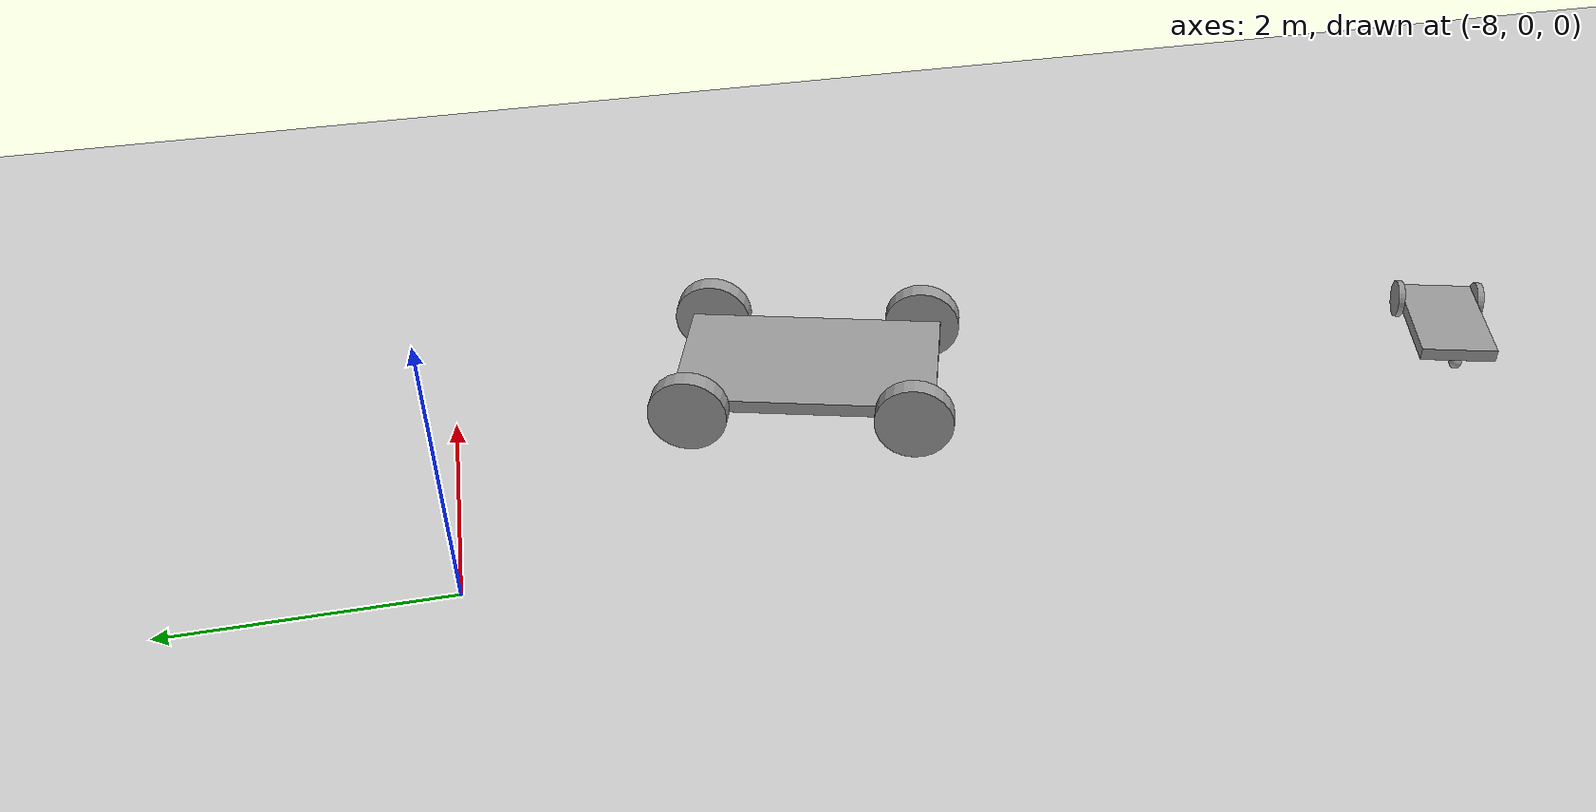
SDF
<sdf version="1.6">
 <world name="default">
  <model name="ground_plane">
   <static>1</static>
   <link name="link">
    <collision name="collision">
     <geometry><plane><normal>0 0 1</normal><size>100 100</size></plane></geometry>
     <surface>
      <contact><collide_bitmask>65535</collide_bitmask></contact>
      <friction><ode><mu>100</mu><mu2>50</mu2></ode></friction>
     </surface>
    </collision>
    <visual name="visual">
     <cast_shadows>0</cast_shadows>
     <geometry><plane><normal>0 0 1</normal><size>100 100</size></plane></geometry>
     <material>
      <script><uri>file://media/materials/scripts/gazebo.material</uri><name>Gazebo/Grey</name></script>
     </material>
    </visual>
   </link>
  </model>
  <model name="robot_4wheeled">
   <link name="link_1">
    <inertial>
     <mass>1</mass>
     <inertia>
      <ixx>0.166667</ixx>
      <ixy>0</ixy>
      <ixz>0</ixz>
      <iyy>0.166667</iyy>
      <iyz>0</iyz>
      <izz>0.166667</izz>
     </inertia>
    </inertial>
    <pose>-0 0.159884 0 0 -0 0</pose>
    <visual name="visual">
     <geometry><box><size>1.2 2 0.1</size></box></geometry>
     <material>
      <lighting>1</lighting>
      <script><uri>file://media/materials/scripts/gazebo.material</uri><name>Gazebo/Grey</name></script>
      <shader type="pixel"><normal_map>__default__</normal_map></shader>
      <ambient>0.3 0.3 0.3 1</ambient>
      <diffuse>0.7 0.7 0.7 1</diffuse>
      <specular>0.1 0.1 0.1 1</specular>
      <emissive>0 0 0 1</emissive>
     </material>
    </visual>
    <collision name="collision">
     <geometry><box><size>1.2 2 0.1</size></box></geometry>
     <surface>
      <friction>
       <ode><mu>1</mu><mu2>1</mu2><fdir1>0 0 0</fdir1><slip1>0</slip1><slip2>0</slip2></ode>
       <torsional>
        <coefficient>1</coefficient>
        <patch_radius>0</patch_radius>
        <surface_radius>0</surface_radius>
        <use_patch_radius>1</use_patch_radius>
        <ode><slip>0</slip></ode>
       </torsional>
      </friction>
      <bounce><restitution_coefficient>0</restitution_coefficient><threshold>1e+06</threshold></bounce>
      <contact>
       <collide_without_contact>0</collide_without_contact>
       <collide_without_contact_bitmask>1</collide_without_contact_bitmask>
       <collide_bitmask>1</collide_bitmask>
       <ode>
        <soft_cfm>0</soft_cfm>
        <soft_erp>0.2</soft_erp>
        <kp>1e+13</kp>
        <kd>1</kd>
        <max_vel>0.01</max_vel>
        <min_depth>0</min_depth>
       </ode>
       <bullet>
        <split_impulse>1</split_impulse>
        <split_impulse_penetration_threshold>-0.01</split_impulse_penetration_threshold>
        <soft_cfm>0</soft_cfm>
        <soft_erp>0.2</soft_erp>
        <kp>1e+13</kp>
        <kd>1</kd>
       </bullet>
      </contact>
     </surface>
    </collision>
   </link>
   <link name="link_2">
    <inertial>
     <mass>1</mass>
     <inertia><ixx>0.145833</ixx><ixy>0</ixy><ixz>0</ixz><iyy>0.145833</iyy><iyz>0</iyz><izz>0.125</izz></inertia>
    </inertial>
    <pose>-0.675001 1.00988 0 -3.14159 -1.57079 -3.14159</pose>
    <visual name="visual">
     <geometry><cylinder><radius>0.3</radius><length>0.15</length></cylinder></geometry>
     <material>
      <lighting>1</lighting>
      <script><uri>file://media/materials/scripts/gazebo.material</uri><name>Gazebo/Grey</name></script>
      <shader type="pixel"><normal_map>__default__</normal_map></shader>
      <ambient>0.3 0.3 0.3 1</ambient>
      <diffuse>0.7 0.7 0.7 1</diffuse>
      <specular>0.01 0.01 0.01 1</specular>
      <emissive>0 0 0 1</emissive>
     </material>
    </visual>
    <collision name="collision">
     <geometry><cylinder><radius>0.3</radius><length>0.15</length></cylinder></geometry>
     <surface>
      <friction>
       <ode><mu>1</mu><mu2>1</mu2><fdir1>0 0 0</fdir1><slip1>0</slip1><slip2>0</slip2></ode>
       <torsional>
        <coefficient>1</coefficient>
        <patch_radius>0</patch_radius>
        <surface_radius>0</surface_radius>
        <use_patch_radius>1</use_patch_radius>
        <ode><slip>0</slip></ode>
       </torsional>
      </friction>
      <bounce><restitution_coefficient>0</restitution_coefficient><threshold>1e+06</threshold></bounce>
      <contact>
       <collide_without_contact>0</collide_without_contact>
       <collide_without_contact_bitmask>1</collide_without_contact_bitmask>
       <collide_bitmask>1</collide_bitmask>
       <ode>
        <soft_cfm>0</soft_cfm>
        <soft_erp>0.2</soft_erp>
        <kp>1e+13</kp>
        <kd>1</kd>
        <max_vel>0.01</max_vel>
        <min_depth>0</min_depth>
       </ode>
       <bullet>
        <split_impulse>1</split_impulse>
        <split_impulse_penetration_threshold>-0.01</split_impulse_penetration_threshold>
        <soft_cfm>0</soft_cfm>
        <soft_erp>0.2</soft_erp>
        <kp>1e+13</kp>
        <kd>1</kd>
       </bullet>
      </contact>
     </surface>
    </collision>
   </link>
   <link name="link_2_clone">
    <inertial>
     <mass>1</mass>
     <inertia><ixx>0.145833</ixx><ixy>0</ixy><ixz>0</ixz><iyy>0.145833</iyy><iyz>0</iyz><izz>0.125</izz></inertia>
    </inertial>
    <pose>0.675001 1.00988 0 -3.14159 -1.57079 -3.14159</pose>
    <visual name="visual">
     <geometry><cylinder><radius>0.3</radius><length>0.15</length></cylinder></geometry>
     <material>
      <lighting>1</lighting>
      <script><uri>file://media/materials/scripts/gazebo.material</uri><name>Gazebo/Grey</name></script>
      <shader type="pixel"><normal_map>__default__</normal_map></shader>
      <ambient>0.3 0.3 0.3 1</ambient>
      <diffuse>0.7 0.7 0.7 1</diffuse>
      <specular>0.01 0.01 0.01 1</specular>
      <emissive>0 0 0 1</emissive>
     </material>
    </visual>
    <collision name="collision">
     <geometry><cylinder><radius>0.3</radius><length>0.15</length></cylinder></geometry>
     <surface>
      <friction>
       <ode><mu>1</mu><mu2>1</mu2><fdir1>0 0 0</fdir1><slip1>0</slip1><slip2>0</slip2></ode>
       <torsional>
        <coefficient>1</coefficient>
        <patch_radius>0</patch_radius>
        <surface_radius>0</surface_radius>
        <use_patch_radius>1</use_patch_radius>
        <ode><slip>0</slip></ode>
       </torsional>
      </friction>
      <bounce><restitution_coefficient>0</restitution_coefficient><threshold>1e+06</threshold></bounce>
      <contact>
       <collide_without_contact>0</collide_without_contact>
       <collide_without_contact_bitmask>1</collide_without_contact_bitmask>
       <collide_bitmask>1</collide_bitmask>
       <ode>
        <soft_cfm>0</soft_cfm>
        <soft_erp>0.2</soft_erp>
        <kp>1e+13</kp>
        <kd>1</kd>
        <max_vel>0.01</max_vel>
        <min_depth>0</min_depth>
       </ode>
       <bullet>
        <split_impulse>1</split_impulse>
        <split_impulse_penetration_threshold>-0.01</split_impulse_penetration_threshold>
        <soft_cfm>0</soft_cfm>
        <soft_erp>0.2</soft_erp>
        <kp>1e+13</kp>
        <kd>1</kd>
       </bullet>
      </contact>
     </surface>
    </collision>
   </link>
   <link name="link_2_clone_0">
    <inertial>
     <mass>1</mass>
     <inertia><ixx>0.145833</ixx><ixy>0</ixy><ixz>0</ixz><iyy>0.145833</iyy><iyz>0</iyz><izz>0.125</izz></inertia>
    </inertial>
    <pose>0.675001 -0.690116 0 -3.14159 -1.57079 -3.14159</pose>
    <visual name="visual">
     <geometry><cylinder><radius>0.3</radius><length>0.15</length></cylinder></geometry>
     <material>
      <lighting>1</lighting>
      <script><uri>file://media/materials/scripts/gazebo.material</uri><name>Gazebo/Grey</name></script>
      <shader type="pixel"><normal_map>__default__</normal_map></shader>
      <ambient>0.3 0.3 0.3 1</ambient>
      <diffuse>0.7 0.7 0.7 1</diffuse>
      <specular>0.01 0.01 0.01 1</specular>
      <emissive>0 0 0 1</emissive>
     </material>
    </visual>
    <collision name="collision">
     <geometry><cylinder><radius>0.3</radius><length>0.15</length></cylinder></geometry>
     <surface>
      <friction>
       <ode><mu>1</mu><mu2>1</mu2><fdir1>0 0 0</fdir1><slip1>0</slip1><slip2>0</slip2></ode>
       <torsional>
        <coefficient>1</coefficient>
        <patch_radius>0</patch_radius>
        <surface_radius>0</surface_radius>
        <use_patch_radius>1</use_patch_radius>
        <ode><slip>0</slip></ode>
       </torsional>
      </friction>
      <bounce><restitution_coefficient>0</restitution_coefficient><threshold>1e+06</threshold></bounce>
      <contact>
       <collide_without_contact>0</collide_without_contact>
       <collide_without_contact_bitmask>1</collide_without_contact_bitmask>
       <collide_bitmask>1</collide_bitmask>
       <ode>
        <soft_cfm>0</soft_cfm>
        <soft_erp>0.2</soft_erp>
        <kp>1e+13</kp>
        <kd>1</kd>
        <max_vel>0.01</max_vel>
        <min_depth>0</min_depth>
       </ode>
       <bullet>
        <split_impulse>1</split_impulse>
        <split_impulse_penetration_threshold>-0.01</split_impulse_penetration_threshold>
        <soft_cfm>0</soft_cfm>
        <soft_erp>0.2</soft_erp>
        <kp>1e+13</kp>
        <kd>1</kd>
       </bullet>
      </contact>
     </surface>
    </collision>
   </link>
   <link name="link_2_clone_1">
    <inertial>
     <mass>1</mass>
     <inertia><ixx>0.145833</ixx><ixy>0</ixy><ixz>0</ixz><iyy>0.145833</iyy><iyz>0</iyz><izz>0.125</izz></inertia>
    </inertial>
    <pose>-0.675001 -0.690116 0 -3.14159 -1.57079 -3.14159</pose>
    <visual name="visual">
     <geometry><cylinder><radius>0.3</radius><length>0.15</length></cylinder></geometry>
     <material>
      <lighting>1</lighting>
      <script><uri>file://media/materials/scripts/gazebo.material</uri><name>Gazebo/Grey</name></script>
      <shader type="pixel"><normal_map>__default__</normal_map></shader>
      <ambient>0.3 0.3 0.3 1</ambient>
      <diffuse>0.7 0.7 0.7 1</diffuse>
      <specular>0.01 0.01 0.01 1</specular>
      <emissive>0 0 0 1</emissive>
     </material>
    </visual>
    <collision name="collision">
     <geometry><cylinder><radius>0.3</radius><length>0.15</length></cylinder></geometry>
     <surface>
      <friction>
       <ode><mu>1</mu><mu2>1</mu2><fdir1>0 0 0</fdir1><slip1>0</slip1><slip2>0</slip2></ode>
       <torsional>
        <coefficient>1</coefficient>
        <patch_radius>0</patch_radius>
        <surface_radius>0</surface_radius>
        <use_patch_radius>1</use_patch_radius>
        <ode><slip>0</slip></ode>
       </torsional>
      </friction>
      <bounce><restitution_coefficient>0</restitution_coefficient><threshold>1e+06</threshold></bounce>
      <contact>
       <collide_without_contact>0</collide_without_contact>
       <collide_without_contact_bitmask>1</collide_without_contact_bitmask>
       <collide_bitmask>1</collide_bitmask>
       <ode>
        <soft_cfm>0</soft_cfm>
        <soft_erp>0.2</soft_erp>
        <kp>1e+13</kp>
        <kd>1</kd>
        <max_vel>0.01</max_vel>
        <min_depth>0</min_depth>
       </ode>
       <bullet>
        <split_impulse>1</split_impulse>
        <split_impulse_penetration_threshold>-0.01</split_impulse_penetration_threshold>
        <soft_cfm>0</soft_cfm>
        <soft_erp>0.2</soft_erp>
        <kp>1e+13</kp>
        <kd>1</kd>
       </bullet>
      </contact>
     </surface>
    </collision>
   </link>
   <joint name="link_1_JOINT_0" type="revolute">
    <parent>link_1</parent>
    <child>link_2</child>
    <axis>
     <xyz>0 0 1</xyz>
     <limit>
      <lower>-1.79769e+308</lower>
      <upper>1.79769e+308</upper>
      <effort>-1</effort>
      <velocity>-1</velocity>
     </limit>
     <dynamics>
      <spring_reference>0</spring_reference>
      <spring_stiffness>0</spring_stiffness>
      <damping>0</damping>
     </dynamics>
     <use_parent_model_frame>0</use_parent_model_frame>
    </axis>
    <physics>
     <ode><limit><cfm>0</cfm><erp>0.2</erp></limit><suspension><cfm>0</cfm><erp>0.2</erp></suspension></ode>
    </physics>
   </joint>
   <joint name="link_1_JOINT_1" type="revolute">
    <parent>link_1</parent>
    <child>link_2_clone_1</child>
    <axis>
     <xyz>0 0 1</xyz>
     <limit>
      <lower>-1.79769e+308</lower>
      <upper>1.79769e+308</upper>
      <effort>-1</effort>
      <velocity>-1</velocity>
     </limit>
     <dynamics>
      <spring_reference>0</spring_reference>
      <spring_stiffness>0</spring_stiffness>
      <damping>0</damping>
     </dynamics>
     <use_parent_model_frame>0</use_parent_model_frame>
    </axis>
    <physics>
     <ode><limit><cfm>0</cfm><erp>0.2</erp></limit><suspension><cfm>0</cfm><erp>0.2</erp></suspension></ode>
    </physics>
   </joint>
   <joint name="link_1_JOINT_2" type="revolute">
    <parent>link_1</parent>
    <child>link_2_clone</child>
    <axis>
     <xyz>0 0 1</xyz>
     <limit>
      <lower>-1.79769e+308</lower>
      <upper>1.79769e+308</upper>
      <effort>-1</effort>
      <velocity>-1</velocity>
     </limit>
     <dynamics>
      <spring_reference>0</spring_reference>
      <spring_stiffness>0</spring_stiffness>
      <damping>0</damping>
     </dynamics>
     <use_parent_model_frame>0</use_parent_model_frame>
    </axis>
    <physics>
     <ode><limit><cfm>0</cfm><erp>0.2</erp></limit><suspension><cfm>0</cfm><erp>0.2</erp></suspension></ode>
    </physics>
   </joint>
   <joint name="link_1_JOINT_3" type="revolute">
    <parent>link_1</parent>
    <child>link_2_clone_0</child>
    <axis>
     <xyz>0 0 1</xyz>
     <limit>
      <lower>-1.79769e+308</lower>
      <upper>1.79769e+308</upper>
      <effort>-1</effort>
      <velocity>-1</velocity>
     </limit>
     <dynamics>
      <spring_reference>0</spring_reference>
      <spring_stiffness>0</spring_stiffness>
      <damping>0</damping>
     </dynamics>
     <use_parent_model_frame>0</use_parent_model_frame>
    </axis>
    <physics>
     <ode><limit><cfm>0</cfm><erp>0.2</erp></limit><suspension><cfm>0</cfm><erp>0.2</erp></suspension></ode>
    </physics>
   </joint>
   <static>0</static>
   <pose>-6.2578 -2.88998 0.299997 7e-06 -1e-06 -0.281484</pose>
  </model>
  <model name="robot_tricycle">
   <link name="link_0">
    <inertial>
     <mass>1</mass>
     <inertia>
      <ixx>0.166667</ixx>
      <ixy>0</ixy>
      <ixz>0</ixz>
      <iyy>0.166667</iyy>
      <iyz>0</iyz>
      <izz>0.166667</izz>
     </inertia>
    </inertial>
    <pose>-0.0625 0.0125 0.025 0 -0 0</pose>
    <visual name="visual">
     <geometry><box><size>1 0.6 0.1</size></box></geometry>
     <material>
      <lighting>1</lighting>
      <script><uri>file://media/materials/scripts/gazebo.material</uri><name>Gazebo/Grey</name></script>
      <shader type="pixel"><normal_map>__default__</normal_map></shader>
      <ambient>0.3 0.3 0.3 1</ambient>
      <diffuse>0.7 0.7 0.7 1</diffuse>
      <specular>0.01 0.01 0.01 1</specular>
      <emissive>0 0 0 1</emissive>
     </material>
    </visual>
    <collision name="collision">
     <geometry><box><size>1 0.6 0.1</size></box></geometry>
     <surface>
      <friction>
       <ode><mu>1</mu><mu2>1</mu2><fdir1>0 0 0</fdir1><slip1>0</slip1><slip2>0</slip2></ode>
       <torsional>
        <coefficient>1</coefficient>
        <patch_radius>0</patch_radius>
        <surface_radius>0</surface_radius>
        <use_patch_radius>1</use_patch_radius>
        <ode><slip>0</slip></ode>
       </torsional>
      </friction>
      <bounce><restitution_coefficient>0</restitution_coefficient><threshold>1e+06</threshold></bounce>
      <contact>
       <collide_without_contact>0</collide_without_contact>
       <collide_without_contact_bitmask>1</collide_without_contact_bitmask>
       <collide_bitmask>1</collide_bitmask>
       <ode>
        <soft_cfm>0</soft_cfm>
        <soft_erp>0.2</soft_erp>
        <kp>1e+13</kp>
        <kd>1</kd>
        <max_vel>0.01</max_vel>
        <min_depth>0</min_depth>
       </ode>
       <bullet>
        <split_impulse>1</split_impulse>
        <split_impulse_penetration_threshold>-0.01</split_impulse_penetration_threshold>
        <soft_cfm>0</soft_cfm>
        <soft_erp>0.2</soft_erp>
        <kp>1e+13</kp>
        <kd>1</kd>
       </bullet>
      </contact>
     </surface>
    </collision>
   </link>
   <link name="link_1">
    <inertial>
     <mass>1</mass>
     <inertia><ixx>0.1</ixx><ixy>0</ixy><ixz>0</ixz><iyy>0.1</iyy><iyz>0</iyz><izz>0.1</izz></inertia>
    </inertial>
    <pose>-0.5125 0.0125 -0.075 0 -0 0</pose>
    <visual name="visual">
     <geometry><sphere><radius>0.05</radius></sphere></geometry>
     <material>
      <lighting>1</lighting>
      <script><uri>file://media/materials/scripts/gazebo.material</uri><name>Gazebo/Grey</name></script>
      <shader type="pixel"><normal_map>__default__</normal_map></shader>
      <ambient>0.3 0.3 0.3 1</ambient>
      <diffuse>0.7 0.7 0.7 1</diffuse>
      <specular>0.01 0.01 0.01 1</specular>
      <emissive>0 0 0 1</emissive>
     </material>
    </visual>
    <collision name="collision">
     <geometry><sphere><radius>0.05</radius></sphere></geometry>
     <surface>
      <friction>
       <ode><mu>1</mu><mu2>1</mu2><fdir1>0 0 0</fdir1><slip1>0</slip1><slip2>0</slip2></ode>
       <torsional>
        <coefficient>1</coefficient>
        <patch_radius>0</patch_radius>
        <surface_radius>0</surface_radius>
        <use_patch_radius>1</use_patch_radius>
        <ode><slip>0</slip></ode>
       </torsional>
      </friction>
      <bounce><restitution_coefficient>0</restitution_coefficient><threshold>1e+06</threshold></bounce>
      <contact>
       <collide_without_contact>0</collide_without_contact>
       <collide_without_contact_bitmask>1</collide_without_contact_bitmask>
       <collide_bitmask>1</collide_bitmask>
       <ode>
        <soft_cfm>0</soft_cfm>
        <soft_erp>0.2</soft_erp>
        <kp>1e+13</kp>
        <kd>1</kd>
        <max_vel>0.01</max_vel>
        <min_depth>0</min_depth>
       </ode>
       <bullet>
        <split_impulse>1</split_impulse>
        <split_impulse_penetration_threshold>-0.01</split_impulse_penetration_threshold>
        <soft_cfm>0</soft_cfm>
        <soft_erp>0.2</soft_erp>
        <kp>1e+13</kp>
        <kd>1</kd>
       </bullet>
      </contact>
     </surface>
    </collision>
   </link>
   <link name="link_2">
    <inertial>
     <mass>1</mass>
     <inertia><ixx>0.145833</ixx><ixy>0</ixy><ixz>0</ixz><iyy>0.145833</iyy><iyz>0</iyz><izz>0.125</izz></inertia>
    </inertial>
    <pose>0.2875 0.3375 0.025 1.5708 -0 0</pose>
    <visual name="visual">
     <geometry><cylinder><radius>0.15</radius><length>0.05</length></cylinder></geometry>
     <material>
      <lighting>1</lighting>
      <script><uri>file://media/materials/scripts/gazebo.material</uri><name>Gazebo/Grey</name></script>
      <shader type="pixel"><normal_map>__default__</normal_map></shader>
      <ambient>0.3 0.3 0.3 1</ambient>
      <diffuse>0.7 0.7 0.7 1</diffuse>
      <specular>0.01 0.01 0.01 1</specular>
      <emissive>0 0 0 1</emissive>
     </material>
    </visual>
    <collision name="collision">
     <geometry><cylinder><radius>0.15</radius><length>0.05</length></cylinder></geometry>
     <surface>
      <friction>
       <ode><mu>1</mu><mu2>1</mu2><fdir1>0 0 0</fdir1><slip1>0</slip1><slip2>0</slip2></ode>
       <torsional>
        <coefficient>1</coefficient>
        <patch_radius>0</patch_radius>
        <surface_radius>0</surface_radius>
        <use_patch_radius>1</use_patch_radius>
        <ode><slip>0</slip></ode>
       </torsional>
      </friction>
      <bounce><restitution_coefficient>0</restitution_coefficient><threshold>1e+06</threshold></bounce>
      <contact>
       <collide_without_contact>0</collide_without_contact>
       <collide_without_contact_bitmask>1</collide_without_contact_bitmask>
       <collide_bitmask>1</collide_bitmask>
       <ode>
        <soft_cfm>0</soft_cfm>
        <soft_erp>0.2</soft_erp>
        <kp>1e+13</kp>
        <kd>1</kd>
        <max_vel>0.01</max_vel>
        <min_depth>0</min_depth>
       </ode>
       <bullet>
        <split_impulse>1</split_impulse>
        <split_impulse_penetration_threshold>-0.01</split_impulse_penetration_threshold>
        <soft_cfm>0</soft_cfm>
        <soft_erp>0.2</soft_erp>
        <kp>1e+13</kp>
        <kd>1</kd>
       </bullet>
      </contact>
     </surface>
    </collision>
   </link>
   <link name="link_2_clone">
    <inertial>
     <mass>1</mass>
     <inertia><ixx>0.145833</ixx><ixy>0</ixy><ixz>0</ixz><iyy>0.145833</iyy><iyz>0</iyz><izz>0.125</izz></inertia>
    </inertial>
    <pose>0.2875 -0.3125 0.025 1.5708 -0 0</pose>
    <visual name="visual">
     <geometry><cylinder><radius>0.15</radius><length>0.05</length></cylinder></geometry>
     <material>
      <lighting>1</lighting>
      <script><uri>file://media/materials/scripts/gazebo.material</uri><name>Gazebo/Grey</name></script>
      <shader type="pixel"><normal_map>__default__</normal_map></shader>
      <ambient>0.3 0.3 0.3 1</ambient>
      <diffuse>0.7 0.7 0.7 1</diffuse>
      <specular>0.01 0.01 0.01 1</specular>
      <emissive>0 0 0 1</emissive>
     </material>
    </visual>
    <collision name="collision">
     <geometry><cylinder><radius>0.15</radius><length>0.05</length></cylinder></geometry>
     <surface>
      <friction>
       <ode><mu>1</mu><mu2>1</mu2><fdir1>0 0 0</fdir1><slip1>0</slip1><slip2>0</slip2></ode>
       <torsional>
        <coefficient>1</coefficient>
        <patch_radius>0</patch_radius>
        <surface_radius>0</surface_radius>
        <use_patch_radius>1</use_patch_radius>
        <ode><slip>0</slip></ode>
       </torsional>
      </friction>
      <bounce><restitution_coefficient>0</restitution_coefficient><threshold>1e+06</threshold></bounce>
      <contact>
       <collide_without_contact>0</collide_without_contact>
       <collide_without_contact_bitmask>1</collide_without_contact_bitmask>
       <collide_bitmask>1</collide_bitmask>
       <ode>
        <soft_cfm>0</soft_cfm>
        <soft_erp>0.2</soft_erp>
        <kp>1e+13</kp>
        <kd>1</kd>
        <max_vel>0.01</max_vel>
        <min_depth>0</min_depth>
       </ode>
       <bullet>
        <split_impulse>1</split_impulse>
        <split_impulse_penetration_threshold>-0.01</split_impulse_penetration_threshold>
        <soft_cfm>0</soft_cfm>
        <soft_erp>0.2</soft_erp>
        <kp>1e+13</kp>
        <kd>1</kd>
       </bullet>
      </contact>
     </surface>
    </collision>
   </link>
   <joint name="link_0_JOINT_1" type="ball">
    <parent>link_0</parent>
    <child>link_1</child>
    <physics>
     <ode><limit><cfm>0</cfm><erp>0.2</erp></limit><suspension><cfm>0</cfm><erp>0.2</erp></suspension></ode>
    </physics>
   </joint>
   <joint name="link_0_JOINT_2" type="revolute">
    <parent>link_0</parent>
    <child>link_2_clone</child>
    <axis>
     <xyz>0 0 1</xyz>
     <limit>
      <lower>-1.79769e+308</lower>
      <upper>1.79769e+308</upper>
      <effort>-1</effort>
      <velocity>-1</velocity>
     </limit>
     <dynamics>
      <spring_reference>0</spring_reference>
      <spring_stiffness>0</spring_stiffness>
      <damping>0</damping>
     </dynamics>
     <use_parent_model_frame>0</use_parent_model_frame>
    </axis>
    <physics>
     <ode><limit><cfm>0</cfm><erp>0.2</erp></limit><suspension><cfm>0</cfm><erp>0.2</erp></suspension></ode>
    </physics>
   </joint>
   <joint name="link_0_JOINT_5" type="revolute">
    <parent>link_0</parent>
    <child>link_2</child>
    <axis>
     <xyz>0 0 1</xyz>
     <limit>
      <lower>-1.79769e+308</lower>
      <upper>1.79769e+308</upper>
      <effort>-1</effort>
      <velocity>-1</velocity>
     </limit>
     <dynamics>
      <spring_reference>0</spring_reference>
      <spring_stiffness>0</spring_stiffness>
      <damping>0</damping>
     </dynamics>
     <use_parent_model_frame>0</use_parent_model_frame>
    </axis>
    <physics>
     <ode><limit><cfm>0</cfm><erp>0.2</erp></limit><suspension><cfm>0</cfm><erp>0.2</erp></suspension></ode>
    </physics>
   </joint>
   <static>0</static>
   <pose>-6.47434 -8.05727 0.125 -2e-06 1e-06 -0.277471</pose>
  </model>
 </world>
</sdf>
